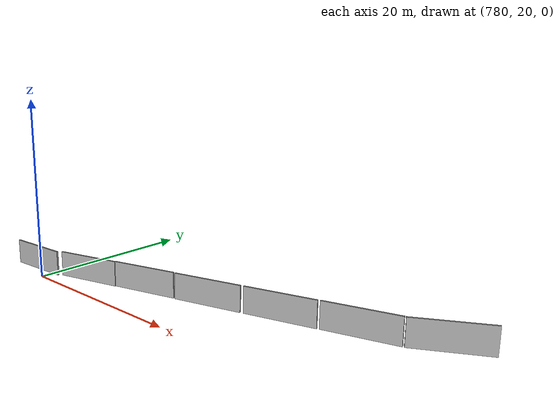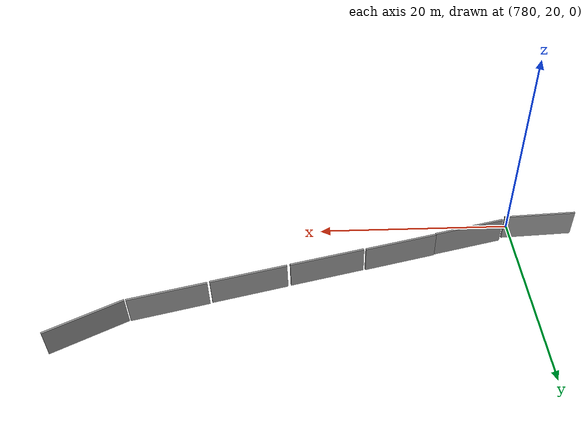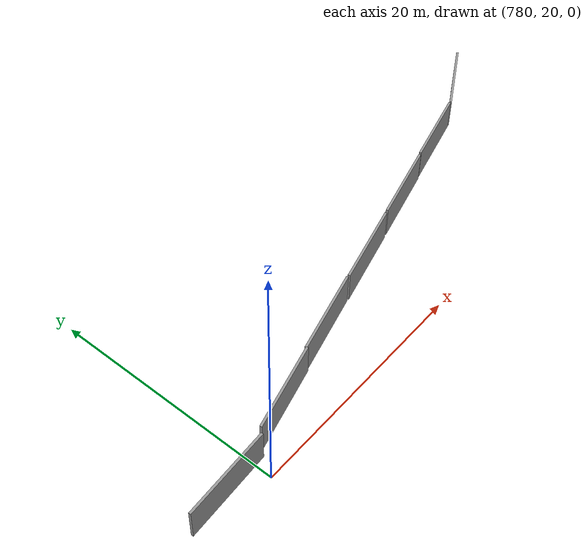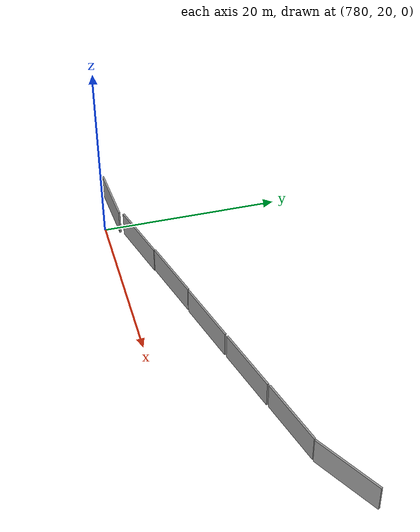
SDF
<sdf version="1.7">
 <world name="default">
  <scene>
   <grid>0</grid>
   <shadows>0</shadows>
   <ambient>0.4 0.4 0.4 1</ambient>
   <background>0.7 0.7 0.7 1</background>
  </scene>
  <light name="sun" type="directional">
   <pose>0 0 10 0 -0 0</pose>
   <diffuse>0.8 0.8 0.8 1</diffuse>
   <specular>0.2 0.2 0.2 1</specular>
   <attenuation>
    <range>1000</range>
    <constant>0.9</constant>
    <linear>0.01</linear>
    <quadratic>0.001</quadratic>
   </attenuation>
   <direction>-0.5 0.1 -0.9</direction>
   <spot><inner_angle>0</inner_angle><outer_angle>0</outer_angle><falloff>0</falloff></spot>
  </light>
  <model name="ground">
   <link name="body">
    <collision name="geom">
     <geometry><plane><normal>0 0 1</normal><size>1 1</size></plane></geometry>
     <surface><friction><ode><mu>1000</mu><mu2>500</mu2></ode></friction></surface>
    </collision>
   </link>
   <static>1</static>
  </model>
  <gravity>0 0 -9.8</gravity>
  <magnetic_field>6e-06 2.3e-05 -4.2e-05</magnetic_field>
  <atmosphere type="adiabatic"/>
  <physics type="ode">
   <max_step_size>0.001</max_step_size>
   <real_time_factor>1</real_time_factor>
   <real_time_update_rate>1000</real_time_update_rate>
  </physics>
  <spherical_coordinates>
   <surface_model>EARTH_WGS84</surface_model>
   <latitude_deg>0</latitude_deg>
   <longitude_deg>0</longitude_deg>
   <elevation>0</elevation>
   <heading_deg>0</heading_deg>
  </spherical_coordinates>
  <model name="wall_road.world">
   <model name="grey_wall">
    <static>1</static>
    <link name="link">
     <pose>0 0 1.4 0 -0 0</pose>
     <collision name="collision"><geometry><box><size>7.5 0.2 2.8</size></box></geometry></collision>
     <visual name="visual">
      <cast_shadows>0</cast_shadows>
      <geometry><box><size>7.5 0.2 2.8</size></box></geometry>
      <material>
       <script>
        <uri>model://grey_wall/materials/scripts</uri>
        <uri>model://grey_wall/materials/textures</uri>
        <name>vrc/grey_wall</name>
       </script>
      </material>
     </visual>
    </link>
    <pose>-14.6987 -4.03968 0 0 -0 0.253074</pose>
   </model>
   <model name="grey_wall_0">
    <static>1</static>
    <link name="link">
     <pose>0 0 1.4 0 -0 0</pose>
     <collision name="collision"><geometry><box><size>7.5 0.2 2.8</size></box></geometry></collision>
     <visual name="visual">
      <cast_shadows>0</cast_shadows>
      <geometry><box><size>7.5 0.2 2.8</size></box></geometry>
      <material>
       <script>
        <uri>model://grey_wall/materials/scripts</uri>
        <uri>model://grey_wall/materials/textures</uri>
        <name>vrc/grey_wall</name>
       </script>
      </material>
     </visual>
    </link>
    <pose>-0.025498 -0.224714 0 0 -0 0.251159</pose>
   </model>
   <model name="grey_wall_clone">
    <static>1</static>
    <link name="link">
     <pose>0 0 1.4 0 -0 0</pose>
     <collision name="collision"><geometry><box><size>7.5 0.2 2.8</size></box></geometry></collision>
     <visual name="visual">
      <cast_shadows>0</cast_shadows>
      <geometry><box><size>7.5 0.2 2.8</size></box></geometry>
      <material>
       <script>
        <uri>model://grey_wall/materials/scripts</uri>
        <uri>model://grey_wall/materials/textures</uri>
        <name>vrc/grey_wall</name>
       </script>
      </material>
     </visual>
    </link>
    <pose>-7.49638 -2.09091 0 0 -0 0.253074</pose>
   </model>
   <model name="grey_wall_clone_0">
    <static>1</static>
    <link name="link">
     <pose>0 0 1.4 0 -0 0</pose>
     <collision name="collision"><geometry><box><size>7.5 0.2 2.8</size></box></geometry></collision>
     <visual name="visual">
      <cast_shadows>0</cast_shadows>
      <geometry><box><size>7.5 0.2 2.8</size></box></geometry>
      <material>
       <script>
        <uri>model://grey_wall/materials/scripts</uri>
        <uri>model://grey_wall/materials/textures</uri>
        <name>vrc/grey_wall</name>
       </script>
      </material>
     </visual>
    </link>
    <pose>7.54353 1.74858 0 0 -0 0.253074</pose>
   </model>
   <model name="grey_wall_clone_1">
    <static>1</static>
    <link name="link">
     <pose>0 0 1.4 0 -0 0</pose>
     <collision name="collision"><geometry><box><size>7.5 0.2 2.8</size></box></geometry></collision>
     <visual name="visual">
      <cast_shadows>0</cast_shadows>
      <geometry><box><size>7.5 0.2 2.8</size></box></geometry>
      <material>
       <script>
        <uri>model://grey_wall/materials/scripts</uri>
        <uri>model://grey_wall/materials/textures</uri>
        <name>vrc/grey_wall</name>
       </script>
      </material>
     </visual>
    </link>
    <pose>15.0155 3.73155 0 0 -0 0.253074</pose>
   </model>
   <model name="grey_wall_clone_2">
    <static>1</static>
    <link name="link">
     <pose>0 0 1.4 0 -0 0</pose>
     <collision name="collision"><geometry><box><size>7.5 0.2 2.8</size></box></geometry></collision>
     <visual name="visual">
      <cast_shadows>0</cast_shadows>
      <geometry><box><size>7.5 0.2 2.8</size></box></geometry>
      <material>
       <script>
        <uri>model://grey_wall/materials/scripts</uri>
        <uri>model://grey_wall/materials/textures</uri>
        <name>vrc/grey_wall</name>
       </script>
      </material>
     </visual>
    </link>
    <pose>22.0734 6.48915 0 0 -0 0.506524</pose>
   </model>
   <model name="grey_wall_clone_3">
    <static>1</static>
    <link name="link">
     <pose>0 0 1.4 0 -0 0</pose>
     <collision name="collision"><geometry><box><size>7.5 0.2 2.8</size></box></geometry></collision>
     <visual name="visual">
      <cast_shadows>0</cast_shadows>
      <geometry><box><size>7.5 0.2 2.8</size></box></geometry>
      <material>
       <script>
        <uri>model://grey_wall/materials/scripts</uri>
        <uri>model://grey_wall/materials/textures</uri>
        <name>vrc/grey_wall</name>
       </script>
      </material>
     </visual>
    </link>
    <pose>-22.4099 -5.61397 0 0 -0 0.056848</pose>
   </model>
   <static>0</static>
   <pose>799.592 26.9723 0 0 -0 0</pose>
  </model>
  <material name="concrete">
   <include><uri>file://media/materials/scripts/gazebo.material</uri><name>Gazebo/Runway</name></include>
  </material>
 </world>
</sdf>
